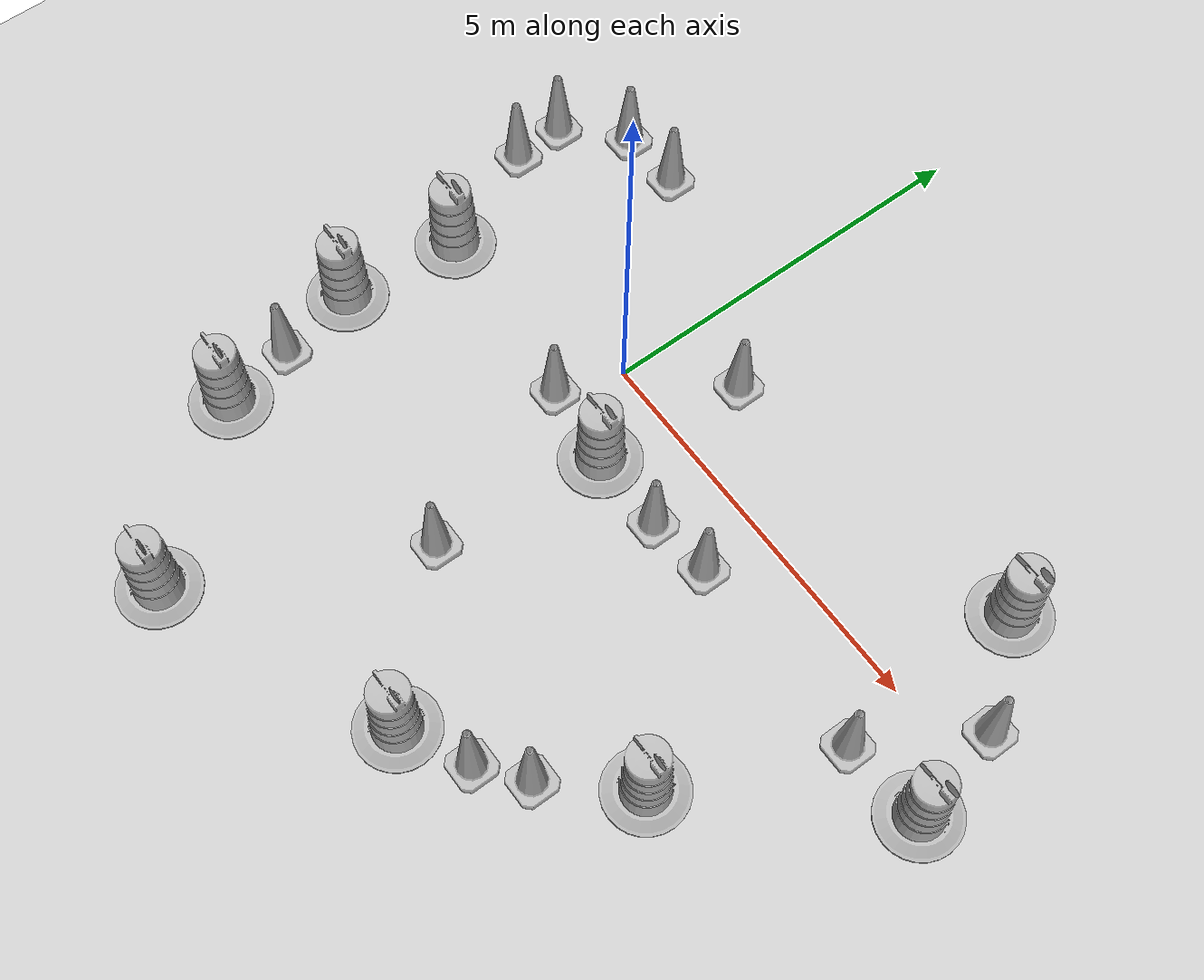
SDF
<sdf version="1.7">
 <world name="default">
  <light name="sun" type="directional">
   <pose>0 0 10 0 -0 0</pose>
   <diffuse>0.8 0.8 0.8 1</diffuse>
   <specular>0.2 0.2 0.2 1</specular>
   <attenuation>
    <range>1000</range>
    <constant>0.9</constant>
    <linear>0.01</linear>
    <quadratic>0.001</quadratic>
   </attenuation>
   <direction>-0.5 0.1 -0.9</direction>
   <spot><inner_angle>0</inner_angle><outer_angle>0</outer_angle><falloff>0</falloff></spot>
  </light>
  <model name="ground_plane">
   <static>1</static>
   <link name="link">
    <collision name="collision">
     <geometry><plane><normal>0 0 1</normal><size>100 100</size></plane></geometry>
     <surface>
      <contact><collide_bitmask>65535</collide_bitmask></contact>
      <friction><ode><mu>100</mu><mu2>50</mu2></ode></friction>
     </surface>
    </collision>
    <visual name="visual">
     <cast_shadows>0</cast_shadows>
     <geometry><plane><normal>0 0 1</normal><size>100 100</size></plane></geometry>
     <material>
      <script><uri>file://media/materials/scripts/gazebo.material</uri><name>Gazebo/Grey</name></script>
     </material>
    </visual>
   </link>
  </model>
  <gravity>0 0 -9.8</gravity>
  <magnetic_field>6e-06 2.3e-05 -4.2e-05</magnetic_field>
  <atmosphere type="adiabatic"/>
  <physics type="ode">
   <max_step_size>0.001</max_step_size>
   <real_time_factor>1</real_time_factor>
   <real_time_update_rate>1000</real_time_update_rate>
  </physics>
  <scene><ambient>0.4 0.4 0.4 1</ambient><background>0.7 0.7 0.7 1</background><shadows>1</shadows></scene>
  <audio><device>default</device></audio>
  <spherical_coordinates>
   <surface_model>EARTH_WGS84</surface_model>
   <latitude_deg>0</latitude_deg>
   <longitude_deg>0</longitude_deg>
   <elevation>0</elevation>
   <heading_deg>0</heading_deg>
  </spherical_coordinates>
  <model name="Construction Barrel">
   <link name="link">
    <inertial>
     <pose>0 0 0.4 0 -0 0</pose>
     <mass>500</mass>
     <inertia><ixx>51.2096</ixx><iyy>51.2096</iyy><izz>25</izz><ixy>0</ixy><ixz>0</ixz><iyz>0</iyz></inertia>
    </inertial>
    <collision name="collision">
     <geometry><mesh><uri>model://construction_barrel/meshes/construction_barrel.dae</uri></mesh></geometry>
    </collision>
    <visual name="visual">
     <geometry><mesh><uri>model://construction_barrel/meshes/construction_barrel.dae</uri></mesh></geometry>
    </visual>
   </link>
   <pose>-2.87751 -2.07288 0 0 0 -5.1e-05</pose>
  </model>
  <model name="Construction Cone">
   <link name="link">
    <collision name="collision">
     <geometry>
      <mesh><scale>10 10 10</scale><uri>model://construction_cone/meshes/construction_cone.dae</uri></mesh>
     </geometry>
    </collision>
    <visual name="visual">
     <geometry>
      <mesh><scale>10 10 10</scale><uri>model://construction_cone/meshes/construction_cone.dae</uri></mesh>
     </geometry>
    </visual>
    <inertial>
     <inertia><ixx>1</ixx><ixy>0</ixy><ixz>0</ixz><iyy>1</iyy><iyz>0</iyz><izz>1</izz></inertia>
     <mass>1</mass>
    </inertial>
   </link>
   <pose>1.7973 -0.929377 -1e-05 -1e-06 0 0</pose>
  </model>
  <model name="Construction Barrel_0">
   <link name="link">
    <inertial>
     <pose>0 0 0.4 0 -0 0</pose>
     <mass>500</mass>
     <inertia><ixx>51.2096</ixx><iyy>51.2096</iyy><izz>25</izz><ixy>0</ixy><ixz>0</ixz><iyz>0</iyz></inertia>
    </inertial>
    <collision name="collision">
     <geometry><mesh><uri>model://construction_barrel/meshes/construction_barrel.dae</uri></mesh></geometry>
    </collision>
    <visual name="visual">
     <geometry><mesh><uri>model://construction_barrel/meshes/construction_barrel.dae</uri></mesh></geometry>
    </visual>
   </link>
   <pose>-2.47741 -3.99572 -2e-06 1e-06 8e-06 -5.4e-05</pose>
  </model>
  <model name="Construction Cone_0">
   <link name="link">
    <collision name="collision">
     <geometry>
      <mesh><scale>10 10 10</scale><uri>model://construction_cone/meshes/construction_cone.dae</uri></mesh>
     </geometry>
    </collision>
    <visual name="visual">
     <geometry>
      <mesh><scale>10 10 10</scale><uri>model://construction_cone/meshes/construction_cone.dae</uri></mesh>
     </geometry>
    </visual>
    <inertial>
     <inertia><ixx>1</ixx><ixy>0</ixy><ixz>0</ixz><iyy>1</iyy><iyz>0</iyz><izz>1</izz></inertia>
     <mass>1</mass>
    </inertial>
   </link>
   <pose>-0.271246 -0.820354 -0 0 -1e-06 0</pose>
  </model>
  <model name="Construction Cone_1">
   <link name="link">
    <collision name="collision">
     <geometry>
      <mesh><scale>10 10 10</scale><uri>model://construction_cone/meshes/construction_cone.dae</uri></mesh>
     </geometry>
    </collision>
    <visual name="visual">
     <geometry>
      <mesh><scale>10 10 10</scale><uri>model://construction_cone/meshes/construction_cone.dae</uri></mesh>
     </geometry>
    </visual>
    <inertial>
     <inertia><ixx>1</ixx><ixy>0</ixy><ixz>0</ixz><iyy>1</iyy><iyz>0</iyz><izz>1</izz></inertia>
     <mass>1</mass>
    </inertial>
   </link>
   <pose>-2.63678 -3.09822 -0 0 -0 0</pose>
  </model>
  <model name="Construction Cone_2">
   <link name="link">
    <collision name="collision">
     <geometry>
      <mesh><scale>10 10 10</scale><uri>model://construction_cone/meshes/construction_cone.dae</uri></mesh>
     </geometry>
    </collision>
    <visual name="visual">
     <geometry>
      <mesh><scale>10 10 10</scale><uri>model://construction_cone/meshes/construction_cone.dae</uri></mesh>
     </geometry>
    </visual>
    <inertial>
     <inertia><ixx>1</ixx><ixy>0</ixy><ixz>0</ixz><iyy>1</iyy><iyz>0</iyz><izz>1</izz></inertia>
     <mass>1</mass>
    </inertial>
   </link>
   <pose>0.974478 0.98541 -0 0 -0 0</pose>
  </model>
  <model name="Construction Barrel_1">
   <link name="link">
    <inertial>
     <pose>0 0 0.4 0 -0 0</pose>
     <mass>500</mass>
     <inertia><ixx>51.2096</ixx><iyy>51.2096</iyy><izz>25</izz><ixy>0</ixy><ixz>0</ixz><iyz>0</iyz></inertia>
    </inertial>
    <collision name="collision">
     <geometry><mesh><uri>model://construction_barrel/meshes/construction_barrel.dae</uri></mesh></geometry>
    </collision>
    <visual name="visual">
     <geometry><mesh><uri>model://construction_barrel/meshes/construction_barrel.dae</uri></mesh></geometry>
    </visual>
   </link>
   <pose>-2.71882 -0.577123 -2e-06 1e-06 8e-06 -4.4e-05</pose>
  </model>
  <model name="Construction Barrel_2">
   <link name="link">
    <inertial>
     <pose>0 0 0.4 0 -0 0</pose>
     <mass>500</mass>
     <inertia><ixx>51.2096</ixx><iyy>51.2096</iyy><izz>25</izz><ixy>0</ixy><ixz>0</ixz><iyz>0</iyz></inertia>
    </inertial>
    <collision name="collision">
     <geometry><mesh><uri>model://construction_barrel/meshes/construction_barrel.dae</uri></mesh></geometry>
    </collision>
    <visual name="visual">
     <geometry><mesh><uri>model://construction_barrel/meshes/construction_barrel.dae</uri></mesh></geometry>
    </visual>
   </link>
   <pose>0.762511 -0.918473 0 0 0 -4e-05</pose>
  </model>
  <model name="Construction Cone_3">
   <link name="link">
    <collision name="collision">
     <geometry>
      <mesh><scale>10 10 10</scale><uri>model://construction_cone/meshes/construction_cone.dae</uri></mesh>
     </geometry>
    </collision>
    <visual name="visual">
     <geometry>
      <mesh><scale>10 10 10</scale><uri>model://construction_cone/meshes/construction_cone.dae</uri></mesh>
     </geometry>
    </visual>
    <inertial>
     <inertia><ixx>1</ixx><ixy>0</ixy><ixz>0</ixz><iyy>1</iyy><iyz>0</iyz><izz>1</izz></inertia>
     <mass>1</mass>
    </inertial>
   </link>
   <pose>0.535189 -3.08704 0 -0 -0 -0</pose>
  </model>
  <model name="Construction Cone_4">
   <link name="link">
    <collision name="collision">
     <geometry>
      <mesh><scale>10 10 10</scale><uri>model://construction_cone/meshes/construction_cone.dae</uri></mesh>
     </geometry>
    </collision>
    <visual name="visual">
     <geometry>
      <mesh><scale>10 10 10</scale><uri>model://construction_cone/meshes/construction_cone.dae</uri></mesh>
     </geometry>
    </visual>
    <inertial>
     <inertia><ixx>1</ixx><ixy>0</ixy><ixz>0</ixz><iyy>1</iyy><iyz>0</iyz><izz>1</izz></inertia>
     <mass>1</mass>
    </inertial>
   </link>
   <pose>-1.87183 2.15624 -0 0 -1e-06 0</pose>
  </model>
  <model name="Construction Cone_5">
   <link name="link">
    <collision name="collision">
     <geometry>
      <mesh><scale>10 10 10</scale><uri>model://construction_cone/meshes/construction_cone.dae</uri></mesh>
     </geometry>
    </collision>
    <visual name="visual">
     <geometry>
      <mesh><scale>10 10 10</scale><uri>model://construction_cone/meshes/construction_cone.dae</uri></mesh>
     </geometry>
    </visual>
    <inertial>
     <inertia><ixx>1</ixx><ixy>0</ixy><ixz>0</ixz><iyy>1</iyy><iyz>0</iyz><izz>1</izz></inertia>
     <mass>1</mass>
    </inertial>
   </link>
   <pose>-2.68269 2.10467 -1e-05 -1e-06 0 0</pose>
  </model>
  <model name="Construction Cone_6">
   <link name="link">
    <collision name="collision">
     <geometry>
      <mesh><scale>10 10 10</scale><uri>model://construction_cone/meshes/construction_cone.dae</uri></mesh>
     </geometry>
    </collision>
    <visual name="visual">
     <geometry>
      <mesh><scale>10 10 10</scale><uri>model://construction_cone/meshes/construction_cone.dae</uri></mesh>
     </geometry>
    </visual>
    <inertial>
     <inertia><ixx>1</ixx><ixy>0</ixy><ixz>0</ixz><iyy>1</iyy><iyz>0</iyz><izz>1</izz></inertia>
     <mass>1</mass>
    </inertial>
   </link>
   <pose>5.97431 0.502155 -8e-06 -5e-06 -0 -0</pose>
  </model>
  <model name="Construction Cone_7">
   <link name="link">
    <collision name="collision">
     <geometry>
      <mesh><scale>10 10 10</scale><uri>model://construction_cone/meshes/construction_cone.dae</uri></mesh>
     </geometry>
    </collision>
    <visual name="visual">
     <geometry>
      <mesh><scale>10 10 10</scale><uri>model://construction_cone/meshes/construction_cone.dae</uri></mesh>
     </geometry>
    </visual>
    <inertial>
     <inertia><ixx>1</ixx><ixy>0</ixy><ixz>0</ixz><iyy>1</iyy><iyz>0</iyz><izz>1</izz></inertia>
     <mass>1</mass>
    </inertial>
   </link>
   <pose>-3.35133 1.47608 -0 0 -0 0</pose>
  </model>
  <model name="Construction Cone_8">
   <link name="link">
    <collision name="collision">
     <geometry>
      <mesh><scale>10 10 10</scale><uri>model://construction_cone/meshes/construction_cone.dae</uri></mesh>
     </geometry>
    </collision>
    <visual name="visual">
     <geometry>
      <mesh><scale>10 10 10</scale><uri>model://construction_cone/meshes/construction_cone.dae</uri></mesh>
     </geometry>
    </visual>
    <inertial>
     <inertia><ixx>1</ixx><ixy>0</ixy><ixz>0</ixz><iyy>1</iyy><iyz>0</iyz><izz>1</izz></inertia>
     <mass>1</mass>
    </inertial>
   </link>
   <pose>-3.31567 0.819314 -0 0 -0 0</pose>
  </model>
  <model name="Construction Barrel_3">
   <link name="link">
    <inertial>
     <pose>0 0 0.4 0 -0 0</pose>
     <mass>500</mass>
     <inertia><ixx>51.2096</ixx><iyy>51.2096</iyy><izz>25</izz><ixy>0</ixy><ixz>0</ixz><iyz>0</iyz></inertia>
    </inertial>
    <collision name="collision">
     <geometry><mesh><uri>model://construction_barrel/meshes/construction_barrel.dae</uri></mesh></geometry>
    </collision>
    <visual name="visual">
     <geometry><mesh><uri>model://construction_barrel/meshes/construction_barrel.dae</uri></mesh></geometry>
    </visual>
   </link>
   <pose>-0.903997 -5.90937 -2e-06 1e-06 8e-06 -2.8e-05</pose>
  </model>
  <model name="Construction Barrel_4">
   <link name="link">
    <inertial>
     <pose>0 0 0.4 0 -0 0</pose>
     <mass>500</mass>
     <inertia><ixx>51.2096</ixx><iyy>51.2096</iyy><izz>25</izz><ixy>0</ixy><ixz>0</ixz><iyz>0</iyz></inertia>
    </inertial>
    <collision name="collision">
     <geometry><mesh><uri>model://construction_barrel/meshes/construction_barrel.dae</uri></mesh></geometry>
    </collision>
    <visual name="visual">
     <geometry><mesh><uri>model://construction_barrel/meshes/construction_barrel.dae</uri></mesh></geometry>
    </visual>
   </link>
   <pose>2.08135 -4.6662 -2e-06 1e-06 8e-06 -3.6e-05</pose>
  </model>
  <model name="Construction Cone_9">
   <link name="link">
    <collision name="collision">
     <geometry>
      <mesh><scale>10 10 10</scale><uri>model://construction_cone/meshes/construction_cone.dae</uri></mesh>
     </geometry>
    </collision>
    <visual name="visual">
     <geometry>
      <mesh><scale>10 10 10</scale><uri>model://construction_cone/meshes/construction_cone.dae</uri></mesh>
     </geometry>
    </visual>
    <inertial>
     <inertia><ixx>1</ixx><ixy>0</ixy><ixz>0</ixz><iyy>1</iyy><iyz>0</iyz><izz>1</izz></inertia>
     <mass>1</mass>
    </inertial>
   </link>
   <pose>2.91546 -4.25465 -8e-06 0 1e-06 0</pose>
  </model>
  <model name="Construction Cone_10">
   <link name="link">
    <collision name="collision">
     <geometry>
      <mesh><scale>10 10 10</scale><uri>model://construction_cone/meshes/construction_cone.dae</uri></mesh>
     </geometry>
    </collision>
    <visual name="visual">
     <geometry>
      <mesh><scale>10 10 10</scale><uri>model://construction_cone/meshes/construction_cone.dae</uri></mesh>
     </geometry>
    </visual>
    <inertial>
     <inertia><ixx>1</ixx><ixy>0</ixy><ixz>0</ixz><iyy>1</iyy><iyz>0</iyz><izz>1</izz></inertia>
     <mass>1</mass>
    </inertial>
   </link>
   <pose>3.44896 -3.83315 -4e-06 -3e-06 0 0</pose>
  </model>
  <model name="Construction Cone_11">
   <link name="link">
    <collision name="collision">
     <geometry>
      <mesh><scale>10 10 10</scale><uri>model://construction_cone/meshes/construction_cone.dae</uri></mesh>
     </geometry>
    </collision>
    <visual name="visual">
     <geometry>
      <mesh><scale>10 10 10</scale><uri>model://construction_cone/meshes/construction_cone.dae</uri></mesh>
     </geometry>
    </visual>
    <inertial>
     <inertia><ixx>1</ixx><ixy>0</ixy><ixz>0</ixz><iyy>1</iyy><iyz>0</iyz><izz>1</izz></inertia>
     <mass>1</mass>
    </inertial>
   </link>
   <pose>2.59459 -0.815686 -8e-06 0 1e-06 0</pose>
  </model>
  <model name="Construction Barrel_5">
   <link name="link">
    <inertial>
     <pose>0 0 0.4 0 -0 0</pose>
     <mass>500</mass>
     <inertia><ixx>51.2096</ixx><iyy>51.2096</iyy><izz>25</izz><ixy>0</ixy><ixz>0</ixz><iyz>0</iyz></inertia>
    </inertial>
    <collision name="collision">
     <geometry><mesh><uri>model://construction_barrel/meshes/construction_barrel.dae</uri></mesh></geometry>
    </collision>
    <visual name="visual">
     <geometry><mesh><uri>model://construction_barrel/meshes/construction_barrel.dae</uri></mesh></geometry>
    </visual>
   </link>
   <pose>4.25284 -2.90874 -0 0 -0 -3.1e-05</pose>
  </model>
  <model name="Construction Barrel_6">
   <link name="link">
    <inertial>
     <pose>0 0 0.4 0 -0 0</pose>
     <mass>500</mass>
     <inertia><ixx>51.2096</ixx><iyy>51.2096</iyy><izz>25</izz><ixy>0</ixy><ixz>0</ixz><iyz>0</iyz></inertia>
    </inertial>
    <collision name="collision">
     <geometry><mesh><uri>model://construction_barrel/meshes/construction_barrel.dae</uri></mesh></geometry>
    </collision>
    <visual name="visual">
     <geometry><mesh><uri>model://construction_barrel/meshes/construction_barrel.dae</uri></mesh></geometry>
    </visual>
   </link>
   <pose>5.07067 1.62005 0 0 0 -3.1e-05</pose>
  </model>
  <model name="Construction Barrel_7">
   <link name="link">
    <inertial>
     <pose>0 0 0.4 0 -0 0</pose>
     <mass>500</mass>
     <inertia><ixx>51.2096</ixx><iyy>51.2096</iyy><izz>25</izz><ixy>0</ixy><ixz>0</ixz><iyz>0</iyz></inertia>
    </inertial>
    <collision name="collision">
     <geometry><mesh><uri>model://construction_barrel/meshes/construction_barrel.dae</uri></mesh></geometry>
    </collision>
    <visual name="visual">
     <geometry><mesh><uri>model://construction_barrel/meshes/construction_barrel.dae</uri></mesh></geometry>
    </visual>
   </link>
   <pose>6.2071 -0.72632 -1e-06 1e-06 -9e-06 -2.8e-05</pose>
  </model>
  <model name="Construction Cone_12">
   <link name="link">
    <collision name="collision">
     <geometry>
      <mesh><scale>10 10 10</scale><uri>model://construction_cone/meshes/construction_cone.dae</uri></mesh>
     </geometry>
    </collision>
    <visual name="visual">
     <geometry>
      <mesh><scale>10 10 10</scale><uri>model://construction_cone/meshes/construction_cone.dae</uri></mesh>
     </geometry>
    </visual>
    <inertial>
     <inertia><ixx>1</ixx><ixy>0</ixy><ixz>0</ixz><iyy>1</iyy><iyz>0</iyz><izz>1</izz></inertia>
     <mass>1</mass>
    </inertial>
   </link>
   <pose>5.16679 -0.844631 -0 0 -0 0</pose>
  </model>
 </world>
</sdf>
